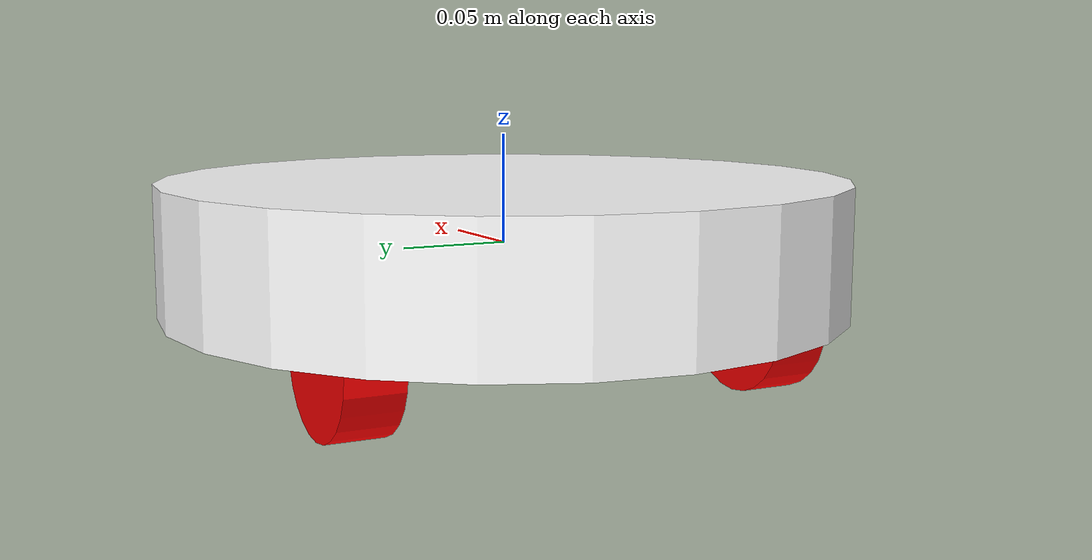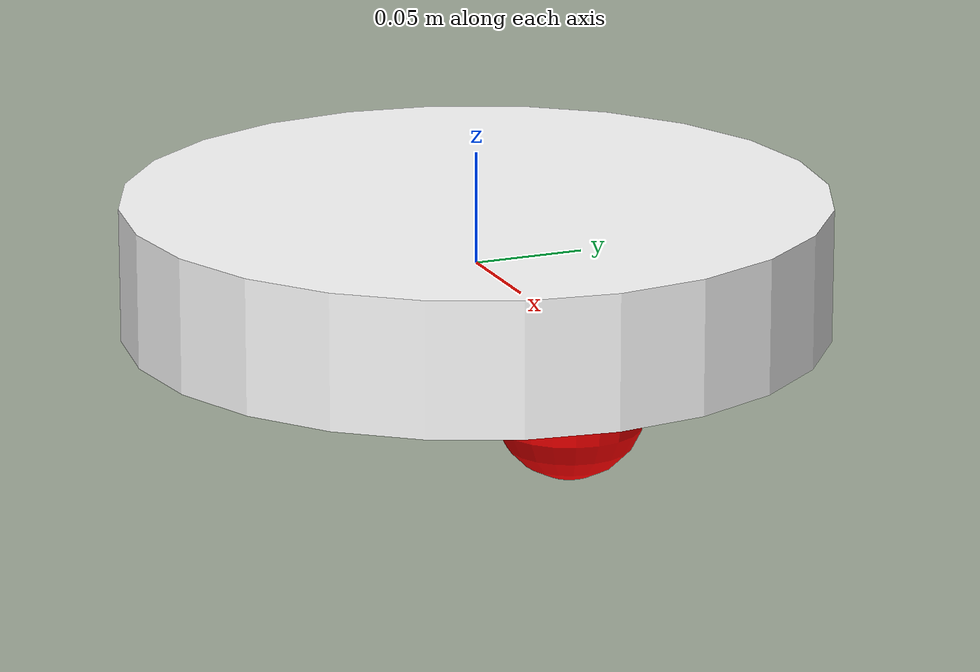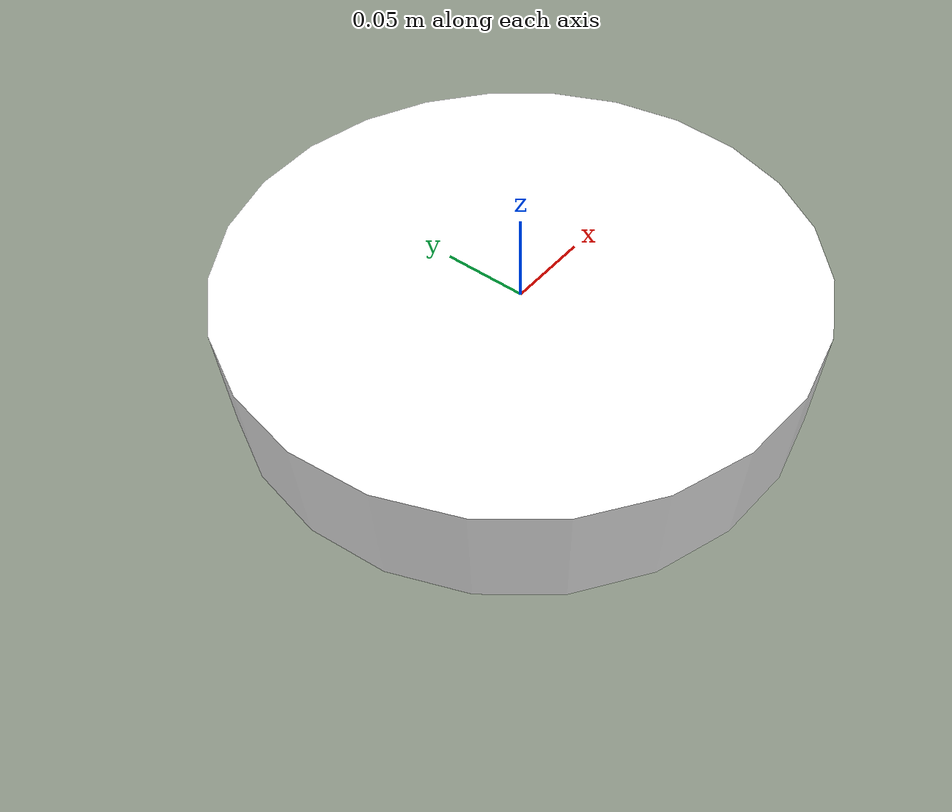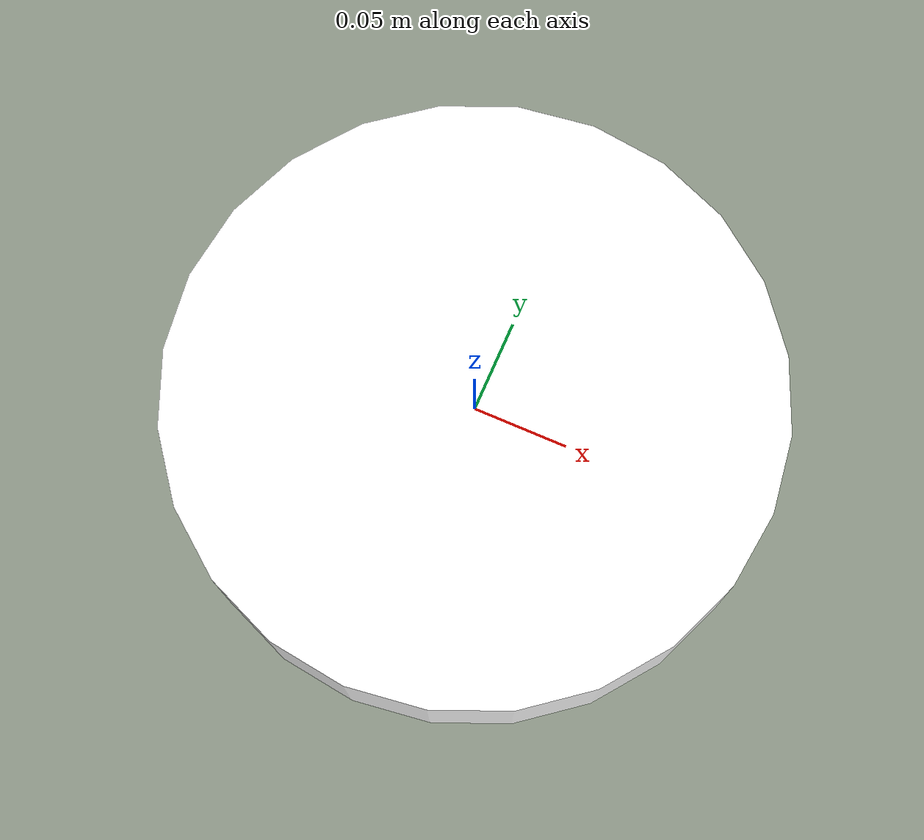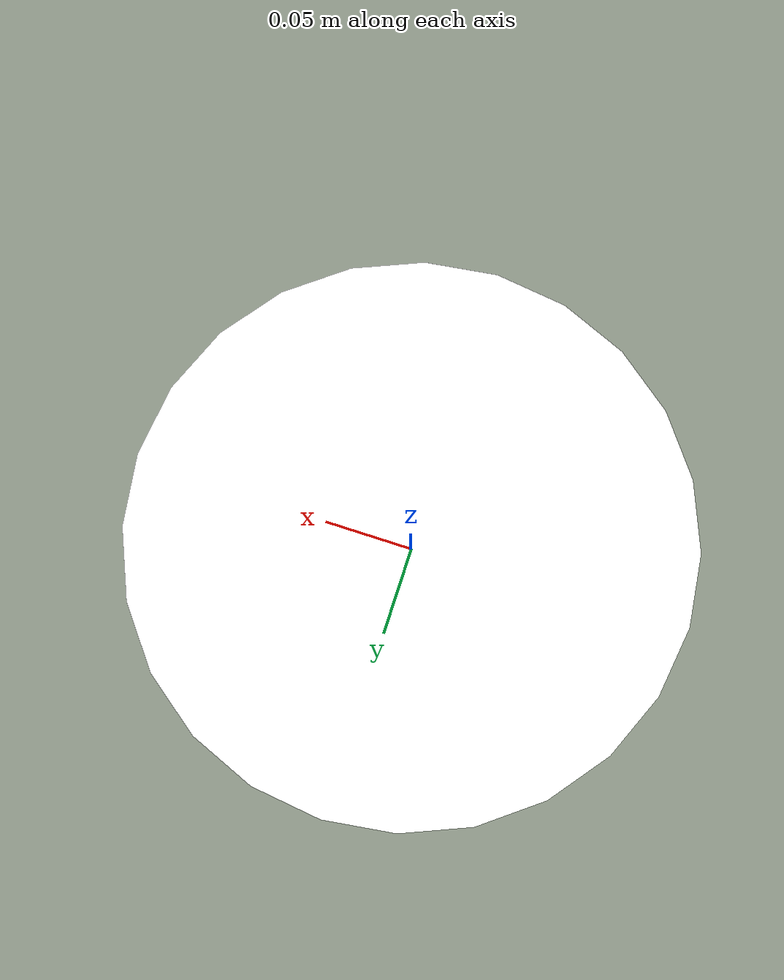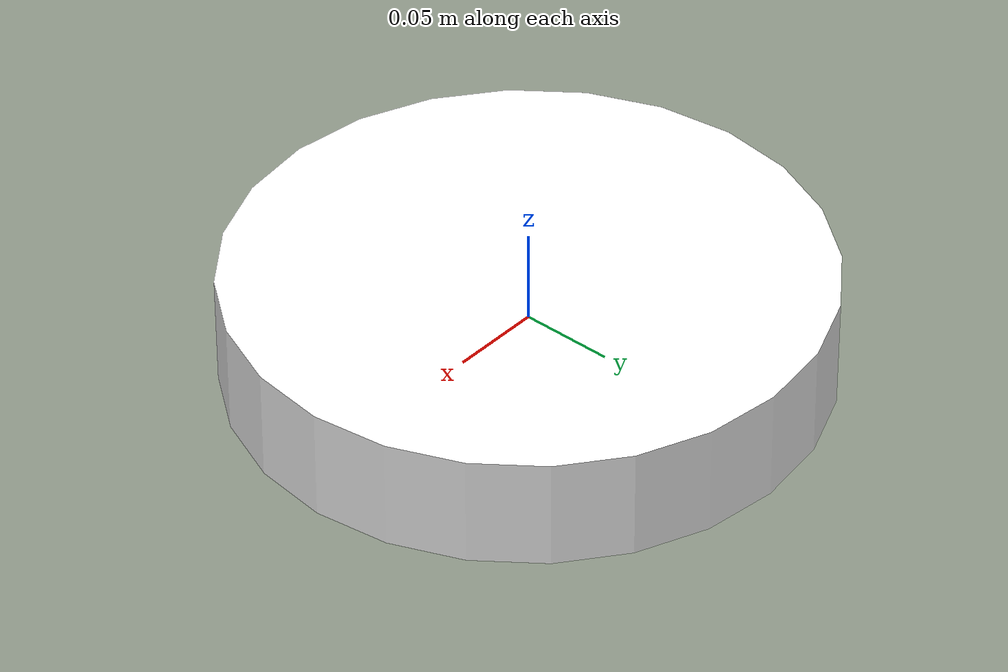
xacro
<?xml version='1.0'?>

<robot name="lese">

    <link name="robot_footprint">
    </link>

    <joint name="robot_footprint_joint" type="fixed">
        <parent link="robot_footprint"/>
        <child link="base_link"/>
    </joint>

    <link name="base_link">
        <inertial>
            <origin xyz="0.0 0.0 0.0" rpy="0.0 0.0 0.0"/>
            <mass value="2.0"/>
            <inertia ixx="0.0" ixy="0.0" ixz="0.0" iyy="0.0" iyz="0.0" izz="0.0"/>
        </inertial>
        <visual name="base_link_visual">
            <origin xyz="0.0 0.0 0.0" rpy="0.0 0.0 0.0"/>
            <geometry>
                <cylinder radius="0.157" length="0.060"/>
            </geometry>
            <material name="">
                <color rgba="1.0 1.0 1.0 1.0"/>
                <texture filename=""/>
            </material>
        </visual>
        <collision>
            <origin xyz="0.0 0.0 0.0" rpy="0.0 0.0 0.0"/>
            <geometry>
                <cylinder radius="0.157" length="0.060"/>
            </geometry>
        </collision>
    </link>

    <link name="left_wheel">
        <inertial>
            <origin xyz="0.0 0.0 0.0" rpy="0.0 0.0 0.0"/>
            <mass value="0.5"/>
            <inertia ixx="0.0" ixy="0.0" ixz="0.0" iyy="0.0" iyz="0.0" izz="0.0"/>
        </inertial>
        <visual name="left_wheel_visual">
            <origin xyz="0.0 0.0 0.0" rpy="0.0 0.0 0.0"/>
            <geometry>
                <cylinder radius="0.033" length="0.026"/>
            </geometry>
            <material name="">
                <color rgba="1.0 0.0 0.0 1.0"/>
                <texture filename=""/>
            </material>
        </visual>
        <collision>
            <origin xyz="0.0 0.0 0.0" rpy="0.0 0.0 0.0"/>
            <geometry>
                <cylinder radius="0.033" length="0.026"/>
            </geometry>
        </collision>
    </link>

    <joint name="left_wheel_joint" type="continuous">
        <origin xyz="-0.060 0.100 -0.033" rpy="0.0 1.5705 1.5705"/>
        <parent link="base_link"/>
        <child link="left_wheel"/>
        <axis xyz="0.0 0.0 1.0"/>
        <limit lower="0.0" upper="0.0" effort="0.0" velocity="0.0"/>
    </joint>

    <link name="right_wheel">
        <inertial>
            <origin xyz="0.0 0.0 0.0" rpy="0.0 0.0 0.0"/>
            <mass value="0.5"/>
            <inertia ixx="0.0" ixy="0.0" ixz="0.0" iyy="0.0" iyz="0.0" izz="0.0"/>
        </inertial>
        <visual name="right_wheel_visual">
            <origin xyz="0.0 0.0 0.0" rpy="0.0 0.0 0.0"/>
            <geometry>
                <cylinder radius="0.033" length="0.026"/>
            </geometry>
            <material name="">
                <color rgba="1.0 0.0 0.0 1.0"/>
                <texture filename=""/>
            </material>
        </visual>
        <collision>
            <origin xyz="0.0 0.0 0.0" rpy="0.0 0.0 0.0"/>
            <geometry>
                <cylinder radius="0.033" length="0.026"/>
            </geometry>
        </collision>
    </link>

    <joint name="right_wheel_joint" type="continuous">
        <origin xyz="-0.060 -0.100 -0.033" rpy="0.0 1.5705 1.5705"/>
        <parent link="base_link"/>
        <child link="right_wheel"/>
        <axis xyz="0.0 0.0 1.0"/>
        <limit lower="0.0" upper="0.0" effort="0.0" velocity="0.0"/>
    </joint>

    <link name="caster_wheel">
        <inertial>
            <origin xyz="0.0 0.0 0.0" rpy="0.0 0.0 0.0"/>
            <mass value="0.5"/>
            <inertia ixx="0.0" ixy="0.0" ixz="0.0" iyy="0.0" iyz="0.0" izz="0.0"/>
        </inertial>
        <visual name="caster_wheel_visual">
            <origin xyz="0.0 0.0 0.0" rpy="0.0 0.0 0.0"/>
            <geometry>
                <sphere radius="0.033"/>
            </geometry>
            <material name="">
                <color rgba="1.0 0.0 0.0 1.0"/>
                <texture filename=""/>
            </material>
        </visual>
        <collision>
            <origin xyz="0.0 0.0 0.0" rpy="0.0 0.0 0.0"/>
            <geometry>
                <sphere radius="0.033"/>
            </geometry>
        </collision>
    </link>

   <joint name="caster_wheel_joint" type="fixed">
        <origin xyz="0.104 0.0 -0.033" rpy="0.0 0.0 0.0"/>
        <parent link="base_link"/>
        <child link="caster_wheel"/>
        <axis xyz="0.0 0.0 0.0"/>
        <limit lower="0.0" upper="0.0" effort="0.0" velocity="0.0"/>
    </joint>
</robot>

<?xml version='1.0'?>

<robot name="lese" xmlns:xacro="http://www.ros.org/wiki/xacro">

    <xacro:include filename="$(find lese_description)/urdf/lese.gazebo"/>

    <link name="robot_footprint">
    </link>

    <joint name="robot_footprint_joint" type="fixed">
        <parent link="robot_footprint"/>
        <child link="base_link"/>
    </joint>

    <link name="base_link">
        <inertial>
            <origin xyz="0.0 0.0 0.0" rpy="0.0 0.0 0.0"/>
            <mass value="2.5"/>
            <inertia ixx="0.0" ixy="0.0" ixz="0.0" iyy="0.0" iyz="0.0" izz="0.0"/>
        </inertial>
        <visual name="base_link_visual">
            <origin xyz="0.0 0.0 0.0" rpy="0.0 0.0 0.0"/>
            <geometry>
                <cylinder radius="0.157" length="0.060"/>
            </geometry>
            <material name="">
                <color rgba="1.0 1.0 1.0 1.0"/>
                <texture filename=""/>
            </material>
        </visual>
        <collision>
            <origin xyz="0.0 0.0 0.0" rpy="0.0 0.0 0.0"/>
            <geometry>
                <cylinder radius="0.157" length="0.060"/>
            </geometry>
        </collision>
    </link>

    <link name="left_wheel">
        <inertial>
            <origin xyz="0.0 0.0 0.0" rpy="0.0 0.0 0.0"/>
            <mass value="2.0"/>
            <inertia ixx="0.1" ixy="0.0" ixz="0.0" iyy="0.1" iyz="0.0" izz="0.1"/>
        </inertial>
        <visual name="left_wheel_visual">
            <origin xyz="0.0 0.0 0.0" rpy="0.0 0.0 0.0"/>
            <geometry>
                <cylinder radius="0.033" length="0.026"/>
            </geometry>
            <material name="">
                <color rgba="1.0 0.0 0.0 1.0"/>
                <texture filename=""/>
            </material>
        </visual>
        <collision>
            <origin xyz="0.0 0.0 0.0" rpy="0.0 0.0 0.0"/>
            <geometry>
                <cylinder radius="0.033" length="0.026"/>
            </geometry>
        </collision>
    </link>

    <joint name="left_wheel_joint" type="continuous">
        <origin xyz="-0.060 0.100 -0.033" rpy="0.0 1.5705 1.5705"/>
        <parent link="base_link"/>
        <child link="left_wheel"/>
        <axis xyz="0.0 0.0 1.0"/>
    </joint>

    <link name="right_wheel">
        <inertial>
            <origin xyz="0.0 0.0 0.0" rpy="0.0 0.0 0.0"/>
            <mass value="2.0"/>
            <inertia ixx="0.1" ixy="0.0" ixz="0.0" iyy="0.1" iyz="0.0" izz="0.1"/>
        </inertial>
        <visual name="right_wheel_visual">
            <origin xyz="0.0 0.0 0.0" rpy="0.0 0.0 0.0"/>
            <geometry>
                <cylinder radius="0.033" length="0.026"/>
            </geometry>
            <material name="">
                <color rgba="1.0 0.0 0.0 1.0"/>
                <texture filename=""/>
            </material>
        </visual>
        <collision>
            <origin xyz="0.0 0.0 0.0" rpy="0.0 0.0 0.0"/>
            <geometry>
                <cylinder radius="0.033" length="0.026"/>
            </geometry>
        </collision>
    </link>

    <joint name="right_wheel_joint" type="continuous">
        <origin xyz="-0.060 -0.100 -0.033" rpy="0.0 1.5705 1.5705"/>
        <parent link="base_link"/>
        <child link="right_wheel"/>
        <axis xyz="0.0 0.0 1.0"/>
    </joint>

    <link name="caster_wheel">
        <inertial>
            <origin xyz="0.0 0.0 0.0" rpy="0.0 0.0 0.0"/>
            <mass value="5.0"/>
            <inertia ixx="0.0" ixy="0.0" ixz="0.0" iyy="0.0" iyz="0.0" izz="0.0"/>
        </inertial>
        <visual name="caster_wheel_visual">
            <origin xyz="0.0 0.0 0.0" rpy="0.0 0.0 0.0"/>
            <geometry>
                <sphere radius="0.033"/>
            </geometry>
            <material name="">
                <color rgba="1.0 0.0 0.0 1.0"/>
                <texture filename=""/>
            </material>
        </visual>
        <collision>
            <origin xyz="0.0 0.0 0.0" rpy="0.0 0.0 0.0"/>
            <geometry>
                <sphere radius="0.033"/>
            </geometry>
        </collision>
    </link>

    <joint name="caster_wheel_joint" type="fixed">
        <origin xyz="0.104 0.0 -0.033" rpy="0.0 0.0 0.0"/>
        <parent link="base_link"/>
        <child link="caster_wheel"/>
        <axis xyz="0.0 0.0 0.0"/>
        <limit lower="0.0" upper="0.0" effort="0.0" velocity="0.0"/>
    </joint>

    <link name="lidar_link">
            <inertial>
                <origin xyz="0.0 0.0 0.0" rpy="0.0 0.0 0.0"/>
                <mass value="0.1"/>
                <inertia ixx="0.0" ixy="0.0" ixz="0.0" iyy="0.0" iyz="0.0" izz="0.0"/>
            </inertial>
            <visual name="lidar_link_visual">
                <origin xyz="0.0 0.0 0.0" rpy="0.0 0.0 0.0"/>
                <geometry>
                    <mesh filename="package://lese_description/meshes/lidar_link.STL"/>
                </geometry>
                <material name="">
                    <color rgba="1.0 0.0 0.0 1.0"/>
                    <texture filename=""/>
                </material>
            </visual>
            <collision>
                <origin xyz="0.0 0.0 0.0" rpy="0.0 0.0 0.0"/>
                <geometry>
                    <box size="0.1 0.1 0.1"/>
                </geometry>
            </collision>
    </link>

    <joint name="lidar_joint" type="fixed">
        <origin xyz="0.095 0.0 0.055" rpy="1.5708 0.0 1.5708"/>
        <parent link="base_link"/>
        <child link="lidar_link"/>

    </joint>

    <link name="laser_data_link">

    </link>

    <joint name="laser_data_joint" type="fixed">
        <origin xyz="0.0 0.0 0.0" rpy="0.0 -1.5708 -1.5708"/>
        <parent link="lidar_link"/>
        <child link="laser_data_link"/>
    </joint>

</robot>
